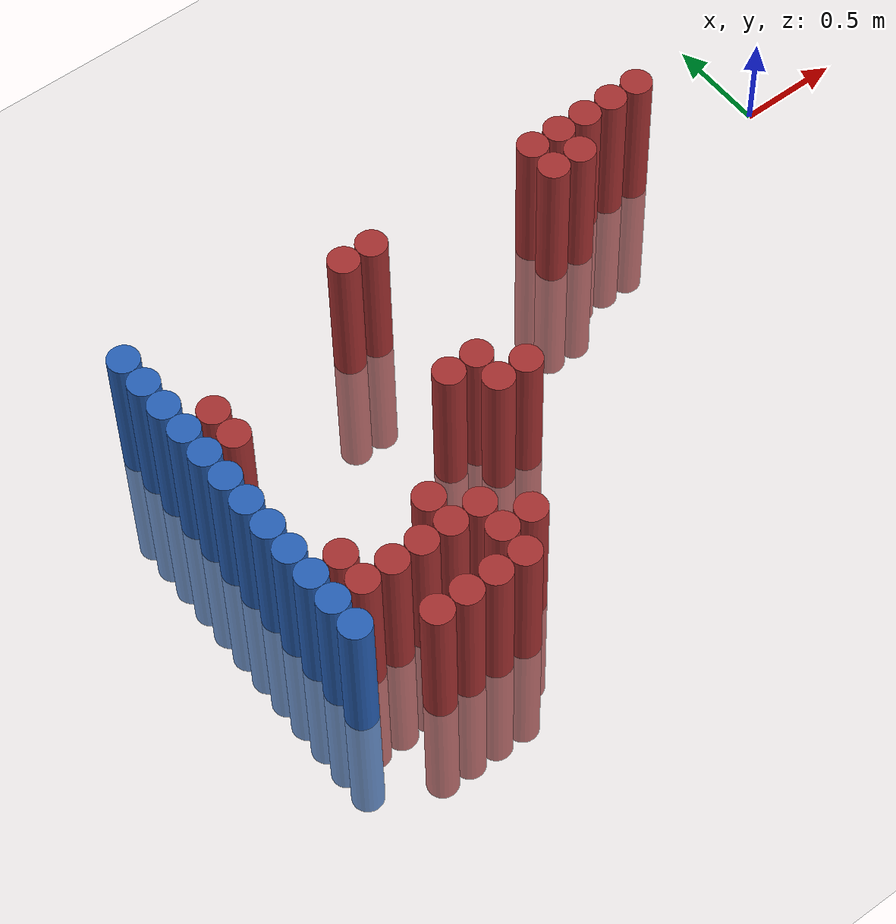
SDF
<sdf version="1.6">
 <world name="default">
  <model name="ground_plane">
   <static>1</static>
   <link name="link">
    <collision name="collision">
     <geometry><plane><normal>0 0 1</normal><size>100 100</size></plane></geometry>
     <surface><friction><ode><mu>100</mu><mu2>50</mu2></ode></friction></surface>
    </collision>
    <visual name="visual">
     <cast_shadows>0</cast_shadows>
     <geometry><plane><normal>0 0 1</normal><size>100 100</size></plane></geometry>
     <material>
      <script><uri>file://media/materials/scripts/gazebo.material</uri><name>Gazebo/Grey</name></script>
     </material>
    </visual>
   </link>
  </model>
  <model name="unit_cylinder_95">
   <static>1</static>
   <pose>-3.425000 -1.475000 0.000000 0.000000 0.000000 0.000000</pose>
   <link name="link">
    <inertial>
     <mass>1</mass>
     <inertia><ixx>0.145833</ixx><ixy>0</ixy><ixz>0</ixz><iyy>0.145833</iyy><iyz>0</iyz><izz>0.125</izz></inertia>
    </inertial>
    <collision name="collision">
     <geometry><cylinder><radius>0.075000</radius><length>1.5</length></cylinder></geometry>
    </collision>
    <visual name="visual">
     <geometry><cylinder><radius>0.075000</radius><length>1.5</length></cylinder></geometry>
     <material>
      <ambient>0.152000 0.379000 0.720000 1</ambient>
      <diffuse>0.152000 0.379000 0.720000 1</diffuse>
     </material>
     <material>
      <script><name>Gazebo/Grey</name><uri>file://media/materials/scripts/gazebo.material</uri></script>
     </material>
    </visual>
   </link>
  </model>
  <model name="unit_cylinder_97">
   <static>1</static>
   <pose>-3.425000 -1.325000 0.000000 0.000000 0.000000 0.000000</pose>
   <link name="link">
    <inertial>
     <mass>1</mass>
     <inertia><ixx>0.145833</ixx><ixy>0</ixy><ixz>0</ixz><iyy>0.145833</iyy><iyz>0</iyz><izz>0.125</izz></inertia>
    </inertial>
    <collision name="collision">
     <geometry><cylinder><radius>0.075000</radius><length>1.5</length></cylinder></geometry>
    </collision>
    <visual name="visual">
     <geometry><cylinder><radius>0.075000</radius><length>1.5</length></cylinder></geometry>
     <material>
      <ambient>0.152000 0.379000 0.720000 1</ambient>
      <diffuse>0.152000 0.379000 0.720000 1</diffuse>
     </material>
     <material>
      <script><name>Gazebo/Grey</name><uri>file://media/materials/scripts/gazebo.material</uri></script>
     </material>
    </visual>
   </link>
  </model>
  <model name="unit_cylinder_99">
   <static>1</static>
   <pose>-3.425000 -1.175000 0.000000 0.000000 0.000000 0.000000</pose>
   <link name="link">
    <inertial>
     <mass>1</mass>
     <inertia><ixx>0.145833</ixx><ixy>0</ixy><ixz>0</ixz><iyy>0.145833</iyy><iyz>0</iyz><izz>0.125</izz></inertia>
    </inertial>
    <collision name="collision">
     <geometry><cylinder><radius>0.075000</radius><length>1.5</length></cylinder></geometry>
    </collision>
    <visual name="visual">
     <geometry><cylinder><radius>0.075000</radius><length>1.5</length></cylinder></geometry>
     <material>
      <ambient>0.152000 0.379000 0.720000 1</ambient>
      <diffuse>0.152000 0.379000 0.720000 1</diffuse>
     </material>
     <material>
      <script><name>Gazebo/Grey</name><uri>file://media/materials/scripts/gazebo.material</uri></script>
     </material>
    </visual>
   </link>
  </model>
  <model name="unit_cylinder_101">
   <static>1</static>
   <pose>-3.425000 -1.025000 0.000000 0.000000 0.000000 0.000000</pose>
   <link name="link">
    <inertial>
     <mass>1</mass>
     <inertia><ixx>0.145833</ixx><ixy>0</ixy><ixz>0</ixz><iyy>0.145833</iyy><iyz>0</iyz><izz>0.125</izz></inertia>
    </inertial>
    <collision name="collision">
     <geometry><cylinder><radius>0.075000</radius><length>1.5</length></cylinder></geometry>
    </collision>
    <visual name="visual">
     <geometry><cylinder><radius>0.075000</radius><length>1.5</length></cylinder></geometry>
     <material>
      <ambient>0.152000 0.379000 0.720000 1</ambient>
      <diffuse>0.152000 0.379000 0.720000 1</diffuse>
     </material>
     <material>
      <script><name>Gazebo/Grey</name><uri>file://media/materials/scripts/gazebo.material</uri></script>
     </material>
    </visual>
   </link>
  </model>
  <model name="unit_cylinder_103">
   <static>1</static>
   <pose>-3.425000 -0.875000 0.000000 0.000000 0.000000 0.000000</pose>
   <link name="link">
    <inertial>
     <mass>1</mass>
     <inertia><ixx>0.145833</ixx><ixy>0</ixy><ixz>0</ixz><iyy>0.145833</iyy><iyz>0</iyz><izz>0.125</izz></inertia>
    </inertial>
    <collision name="collision">
     <geometry><cylinder><radius>0.075000</radius><length>1.5</length></cylinder></geometry>
    </collision>
    <visual name="visual">
     <geometry><cylinder><radius>0.075000</radius><length>1.5</length></cylinder></geometry>
     <material>
      <ambient>0.152000 0.379000 0.720000 1</ambient>
      <diffuse>0.152000 0.379000 0.720000 1</diffuse>
     </material>
     <material>
      <script><name>Gazebo/Grey</name><uri>file://media/materials/scripts/gazebo.material</uri></script>
     </material>
    </visual>
   </link>
  </model>
  <model name="unit_cylinder_105">
   <static>1</static>
   <pose>-3.425000 -0.725000 0.000000 0.000000 0.000000 0.000000</pose>
   <link name="link">
    <inertial>
     <mass>1</mass>
     <inertia><ixx>0.145833</ixx><ixy>0</ixy><ixz>0</ixz><iyy>0.145833</iyy><iyz>0</iyz><izz>0.125</izz></inertia>
    </inertial>
    <collision name="collision">
     <geometry><cylinder><radius>0.075000</radius><length>1.5</length></cylinder></geometry>
    </collision>
    <visual name="visual">
     <geometry><cylinder><radius>0.075000</radius><length>1.5</length></cylinder></geometry>
     <material>
      <ambient>0.152000 0.379000 0.720000 1</ambient>
      <diffuse>0.152000 0.379000 0.720000 1</diffuse>
     </material>
     <material>
      <script><name>Gazebo/Grey</name><uri>file://media/materials/scripts/gazebo.material</uri></script>
     </material>
    </visual>
   </link>
  </model>
  <model name="unit_cylinder_107">
   <static>1</static>
   <pose>-3.425000 -0.575000 0.000000 0.000000 0.000000 0.000000</pose>
   <link name="link">
    <inertial>
     <mass>1</mass>
     <inertia><ixx>0.145833</ixx><ixy>0</ixy><ixz>0</ixz><iyy>0.145833</iyy><iyz>0</iyz><izz>0.125</izz></inertia>
    </inertial>
    <collision name="collision">
     <geometry><cylinder><radius>0.075000</radius><length>1.5</length></cylinder></geometry>
    </collision>
    <visual name="visual">
     <geometry><cylinder><radius>0.075000</radius><length>1.5</length></cylinder></geometry>
     <material>
      <ambient>0.152000 0.379000 0.720000 1</ambient>
      <diffuse>0.152000 0.379000 0.720000 1</diffuse>
     </material>
     <material>
      <script><name>Gazebo/Grey</name><uri>file://media/materials/scripts/gazebo.material</uri></script>
     </material>
    </visual>
   </link>
  </model>
  <model name="unit_cylinder_109">
   <static>1</static>
   <pose>-3.425000 -0.425000 0.000000 0.000000 0.000000 0.000000</pose>
   <link name="link">
    <inertial>
     <mass>1</mass>
     <inertia><ixx>0.145833</ixx><ixy>0</ixy><ixz>0</ixz><iyy>0.145833</iyy><iyz>0</iyz><izz>0.125</izz></inertia>
    </inertial>
    <collision name="collision">
     <geometry><cylinder><radius>0.075000</radius><length>1.5</length></cylinder></geometry>
    </collision>
    <visual name="visual">
     <geometry><cylinder><radius>0.075000</radius><length>1.5</length></cylinder></geometry>
     <material>
      <ambient>0.152000 0.379000 0.720000 1</ambient>
      <diffuse>0.152000 0.379000 0.720000 1</diffuse>
     </material>
     <material>
      <script><name>Gazebo/Grey</name><uri>file://media/materials/scripts/gazebo.material</uri></script>
     </material>
    </visual>
   </link>
  </model>
  <model name="unit_cylinder_111">
   <static>1</static>
   <pose>-3.425000 -0.275000 0.000000 0.000000 0.000000 0.000000</pose>
   <link name="link">
    <inertial>
     <mass>1</mass>
     <inertia><ixx>0.145833</ixx><ixy>0</ixy><ixz>0</ixz><iyy>0.145833</iyy><iyz>0</iyz><izz>0.125</izz></inertia>
    </inertial>
    <collision name="collision">
     <geometry><cylinder><radius>0.075000</radius><length>1.5</length></cylinder></geometry>
    </collision>
    <visual name="visual">
     <geometry><cylinder><radius>0.075000</radius><length>1.5</length></cylinder></geometry>
     <material>
      <ambient>0.152000 0.379000 0.720000 1</ambient>
      <diffuse>0.152000 0.379000 0.720000 1</diffuse>
     </material>
     <material>
      <script><name>Gazebo/Grey</name><uri>file://media/materials/scripts/gazebo.material</uri></script>
     </material>
    </visual>
   </link>
  </model>
  <model name="unit_cylinder_113">
   <static>1</static>
   <pose>-3.425000 -0.125000 0.000000 0.000000 0.000000 0.000000</pose>
   <link name="link">
    <inertial>
     <mass>1</mass>
     <inertia><ixx>0.145833</ixx><ixy>0</ixy><ixz>0</ixz><iyy>0.145833</iyy><iyz>0</iyz><izz>0.125</izz></inertia>
    </inertial>
    <collision name="collision">
     <geometry><cylinder><radius>0.075000</radius><length>1.5</length></cylinder></geometry>
    </collision>
    <visual name="visual">
     <geometry><cylinder><radius>0.075000</radius><length>1.5</length></cylinder></geometry>
     <material>
      <ambient>0.152000 0.379000 0.720000 1</ambient>
      <diffuse>0.152000 0.379000 0.720000 1</diffuse>
     </material>
     <material>
      <script><name>Gazebo/Grey</name><uri>file://media/materials/scripts/gazebo.material</uri></script>
     </material>
    </visual>
   </link>
  </model>
  <model name="unit_cylinder_115">
   <static>1</static>
   <pose>-3.425000 0.025000 0.000000 0.000000 0.000000 0.000000</pose>
   <link name="link">
    <inertial>
     <mass>1</mass>
     <inertia><ixx>0.145833</ixx><ixy>0</ixy><ixz>0</ixz><iyy>0.145833</iyy><iyz>0</iyz><izz>0.125</izz></inertia>
    </inertial>
    <collision name="collision">
     <geometry><cylinder><radius>0.075000</radius><length>1.5</length></cylinder></geometry>
    </collision>
    <visual name="visual">
     <geometry><cylinder><radius>0.075000</radius><length>1.5</length></cylinder></geometry>
     <material>
      <ambient>0.152000 0.379000 0.720000 1</ambient>
      <diffuse>0.152000 0.379000 0.720000 1</diffuse>
     </material>
     <material>
      <script><name>Gazebo/Grey</name><uri>file://media/materials/scripts/gazebo.material</uri></script>
     </material>
    </visual>
   </link>
  </model>
  <model name="unit_cylinder_117">
   <static>1</static>
   <pose>-3.425000 0.175000 0.000000 0.000000 0.000000 0.000000</pose>
   <link name="link">
    <inertial>
     <mass>1</mass>
     <inertia><ixx>0.145833</ixx><ixy>0</ixy><ixz>0</ixz><iyy>0.145833</iyy><iyz>0</iyz><izz>0.125</izz></inertia>
    </inertial>
    <collision name="collision">
     <geometry><cylinder><radius>0.075000</radius><length>1.5</length></cylinder></geometry>
    </collision>
    <visual name="visual">
     <geometry><cylinder><radius>0.075000</radius><length>1.5</length></cylinder></geometry>
     <material>
      <ambient>0.152000 0.379000 0.720000 1</ambient>
      <diffuse>0.152000 0.379000 0.720000 1</diffuse>
     </material>
     <material>
      <script><name>Gazebo/Grey</name><uri>file://media/materials/scripts/gazebo.material</uri></script>
     </material>
    </visual>
   </link>
  </model>
  <model name="unit_cylinder_211">
   <static>1</static>
   <pose>-3.425000 -1.475000 0.000000 0.000000 0.000000 0.000000</pose>
   <link name="link">
    <inertial>
     <mass>1</mass>
     <inertia><ixx>0.145833</ixx><ixy>0</ixy><ixz>0</ixz><iyy>0.145833</iyy><iyz>0</iyz><izz>0.125</izz></inertia>
    </inertial>
    <collision name="collision">
     <geometry><cylinder><radius>0.075000</radius><length>1.5</length></cylinder></geometry>
    </collision>
    <visual name="visual">
     <geometry><cylinder><radius>0.075000</radius><length>1.5</length></cylinder></geometry>
     <material>
      <ambient>0.152000 0.379000 0.720000 1</ambient>
      <diffuse>0.152000 0.379000 0.720000 1</diffuse>
     </material>
     <material>
      <script><name>Gazebo/Grey</name><uri>file://media/materials/scripts/gazebo.material</uri></script>
     </material>
    </visual>
   </link>
  </model>
  <model name="unit_cylinder_212">
   <static>1</static>
   <pose>-3.425000 -1.325000 0.000000 0.000000 0.000000 0.000000</pose>
   <link name="link">
    <inertial>
     <mass>1</mass>
     <inertia><ixx>0.145833</ixx><ixy>0</ixy><ixz>0</ixz><iyy>0.145833</iyy><iyz>0</iyz><izz>0.125</izz></inertia>
    </inertial>
    <collision name="collision">
     <geometry><cylinder><radius>0.075000</radius><length>1.5</length></cylinder></geometry>
    </collision>
    <visual name="visual">
     <geometry><cylinder><radius>0.075000</radius><length>1.5</length></cylinder></geometry>
     <material>
      <ambient>0.152000 0.379000 0.720000 1</ambient>
      <diffuse>0.152000 0.379000 0.720000 1</diffuse>
     </material>
     <material>
      <script><name>Gazebo/Grey</name><uri>file://media/materials/scripts/gazebo.material</uri></script>
     </material>
    </visual>
   </link>
  </model>
  <model name="unit_cylinder_213">
   <static>1</static>
   <pose>-3.425000 -1.175000 0.000000 0.000000 0.000000 0.000000</pose>
   <link name="link">
    <inertial>
     <mass>1</mass>
     <inertia><ixx>0.145833</ixx><ixy>0</ixy><ixz>0</ixz><iyy>0.145833</iyy><iyz>0</iyz><izz>0.125</izz></inertia>
    </inertial>
    <collision name="collision">
     <geometry><cylinder><radius>0.075000</radius><length>1.5</length></cylinder></geometry>
    </collision>
    <visual name="visual">
     <geometry><cylinder><radius>0.075000</radius><length>1.5</length></cylinder></geometry>
     <material>
      <ambient>0.152000 0.379000 0.720000 1</ambient>
      <diffuse>0.152000 0.379000 0.720000 1</diffuse>
     </material>
     <material>
      <script><name>Gazebo/Grey</name><uri>file://media/materials/scripts/gazebo.material</uri></script>
     </material>
    </visual>
   </link>
  </model>
  <model name="unit_cylinder_214">
   <static>1</static>
   <pose>-3.425000 -1.025000 0.000000 0.000000 0.000000 0.000000</pose>
   <link name="link">
    <inertial>
     <mass>1</mass>
     <inertia><ixx>0.145833</ixx><ixy>0</ixy><ixz>0</ixz><iyy>0.145833</iyy><iyz>0</iyz><izz>0.125</izz></inertia>
    </inertial>
    <collision name="collision">
     <geometry><cylinder><radius>0.075000</radius><length>1.5</length></cylinder></geometry>
    </collision>
    <visual name="visual">
     <geometry><cylinder><radius>0.075000</radius><length>1.5</length></cylinder></geometry>
     <material>
      <ambient>0.152000 0.379000 0.720000 1</ambient>
      <diffuse>0.152000 0.379000 0.720000 1</diffuse>
     </material>
     <material>
      <script><name>Gazebo/Grey</name><uri>file://media/materials/scripts/gazebo.material</uri></script>
     </material>
    </visual>
   </link>
  </model>
  <model name="unit_cylinder_215">
   <static>1</static>
   <pose>-3.425000 -0.875000 0.000000 0.000000 0.000000 0.000000</pose>
   <link name="link">
    <inertial>
     <mass>1</mass>
     <inertia><ixx>0.145833</ixx><ixy>0</ixy><ixz>0</ixz><iyy>0.145833</iyy><iyz>0</iyz><izz>0.125</izz></inertia>
    </inertial>
    <collision name="collision">
     <geometry><cylinder><radius>0.075000</radius><length>1.5</length></cylinder></geometry>
    </collision>
    <visual name="visual">
     <geometry><cylinder><radius>0.075000</radius><length>1.5</length></cylinder></geometry>
     <material>
      <ambient>0.152000 0.379000 0.720000 1</ambient>
      <diffuse>0.152000 0.379000 0.720000 1</diffuse>
     </material>
     <material>
      <script><name>Gazebo/Grey</name><uri>file://media/materials/scripts/gazebo.material</uri></script>
     </material>
    </visual>
   </link>
  </model>
  <model name="unit_cylinder_216">
   <static>1</static>
   <pose>-3.425000 -0.725000 0.000000 0.000000 0.000000 0.000000</pose>
   <link name="link">
    <inertial>
     <mass>1</mass>
     <inertia><ixx>0.145833</ixx><ixy>0</ixy><ixz>0</ixz><iyy>0.145833</iyy><iyz>0</iyz><izz>0.125</izz></inertia>
    </inertial>
    <collision name="collision">
     <geometry><cylinder><radius>0.075000</radius><length>1.5</length></cylinder></geometry>
    </collision>
    <visual name="visual">
     <geometry><cylinder><radius>0.075000</radius><length>1.5</length></cylinder></geometry>
     <material>
      <ambient>0.152000 0.379000 0.720000 1</ambient>
      <diffuse>0.152000 0.379000 0.720000 1</diffuse>
     </material>
     <material>
      <script><name>Gazebo/Grey</name><uri>file://media/materials/scripts/gazebo.material</uri></script>
     </material>
    </visual>
   </link>
  </model>
  <model name="unit_cylinder_217">
   <static>1</static>
   <pose>-3.425000 -0.575000 0.000000 0.000000 0.000000 0.000000</pose>
   <link name="link">
    <inertial>
     <mass>1</mass>
     <inertia><ixx>0.145833</ixx><ixy>0</ixy><ixz>0</ixz><iyy>0.145833</iyy><iyz>0</iyz><izz>0.125</izz></inertia>
    </inertial>
    <collision name="collision">
     <geometry><cylinder><radius>0.075000</radius><length>1.5</length></cylinder></geometry>
    </collision>
    <visual name="visual">
     <geometry><cylinder><radius>0.075000</radius><length>1.5</length></cylinder></geometry>
     <material>
      <ambient>0.152000 0.379000 0.720000 1</ambient>
      <diffuse>0.152000 0.379000 0.720000 1</diffuse>
     </material>
     <material>
      <script><name>Gazebo/Grey</name><uri>file://media/materials/scripts/gazebo.material</uri></script>
     </material>
    </visual>
   </link>
  </model>
  <model name="unit_cylinder_218">
   <static>1</static>
   <pose>-3.425000 -0.425000 0.000000 0.000000 0.000000 0.000000</pose>
   <link name="link">
    <inertial>
     <mass>1</mass>
     <inertia><ixx>0.145833</ixx><ixy>0</ixy><ixz>0</ixz><iyy>0.145833</iyy><iyz>0</iyz><izz>0.125</izz></inertia>
    </inertial>
    <collision name="collision">
     <geometry><cylinder><radius>0.075000</radius><length>1.5</length></cylinder></geometry>
    </collision>
    <visual name="visual">
     <geometry><cylinder><radius>0.075000</radius><length>1.5</length></cylinder></geometry>
     <material>
      <ambient>0.152000 0.379000 0.720000 1</ambient>
      <diffuse>0.152000 0.379000 0.720000 1</diffuse>
     </material>
     <material>
      <script><name>Gazebo/Grey</name><uri>file://media/materials/scripts/gazebo.material</uri></script>
     </material>
    </visual>
   </link>
  </model>
  <model name="unit_cylinder_219">
   <static>1</static>
   <pose>-3.425000 -0.275000 0.000000 0.000000 0.000000 0.000000</pose>
   <link name="link">
    <inertial>
     <mass>1</mass>
     <inertia><ixx>0.145833</ixx><ixy>0</ixy><ixz>0</ixz><iyy>0.145833</iyy><iyz>0</iyz><izz>0.125</izz></inertia>
    </inertial>
    <collision name="collision">
     <geometry><cylinder><radius>0.075000</radius><length>1.5</length></cylinder></geometry>
    </collision>
    <visual name="visual">
     <geometry><cylinder><radius>0.075000</radius><length>1.5</length></cylinder></geometry>
     <material>
      <ambient>0.152000 0.379000 0.720000 1</ambient>
      <diffuse>0.152000 0.379000 0.720000 1</diffuse>
     </material>
     <material>
      <script><name>Gazebo/Grey</name><uri>file://media/materials/scripts/gazebo.material</uri></script>
     </material>
    </visual>
   </link>
  </model>
  <model name="unit_cylinder_220">
   <static>1</static>
   <pose>-3.425000 -0.125000 0.000000 0.000000 0.000000 0.000000</pose>
   <link name="link">
    <inertial>
     <mass>1</mass>
     <inertia><ixx>0.145833</ixx><ixy>0</ixy><ixz>0</ixz><iyy>0.145833</iyy><iyz>0</iyz><izz>0.125</izz></inertia>
    </inertial>
    <collision name="collision">
     <geometry><cylinder><radius>0.075000</radius><length>1.5</length></cylinder></geometry>
    </collision>
    <visual name="visual">
     <geometry><cylinder><radius>0.075000</radius><length>1.5</length></cylinder></geometry>
     <material>
      <ambient>0.152000 0.379000 0.720000 1</ambient>
      <diffuse>0.152000 0.379000 0.720000 1</diffuse>
     </material>
     <material>
      <script><name>Gazebo/Grey</name><uri>file://media/materials/scripts/gazebo.material</uri></script>
     </material>
    </visual>
   </link>
  </model>
  <model name="unit_cylinder_221">
   <static>1</static>
   <pose>-3.425000 0.025000 0.000000 0.000000 0.000000 0.000000</pose>
   <link name="link">
    <inertial>
     <mass>1</mass>
     <inertia><ixx>0.145833</ixx><ixy>0</ixy><ixz>0</ixz><iyy>0.145833</iyy><iyz>0</iyz><izz>0.125</izz></inertia>
    </inertial>
    <collision name="collision">
     <geometry><cylinder><radius>0.075000</radius><length>1.5</length></cylinder></geometry>
    </collision>
    <visual name="visual">
     <geometry><cylinder><radius>0.075000</radius><length>1.5</length></cylinder></geometry>
     <material>
      <ambient>0.152000 0.379000 0.720000 1</ambient>
      <diffuse>0.152000 0.379000 0.720000 1</diffuse>
     </material>
     <material>
      <script><name>Gazebo/Grey</name><uri>file://media/materials/scripts/gazebo.material</uri></script>
     </material>
    </visual>
   </link>
  </model>
  <model name="unit_cylinder_259">
   <static>1</static>
   <pose>-3.275000 -1.325000 0.000000 0.000000 0.000000 0.000000</pose>
   <link name="link">
    <inertial>
     <mass>1</mass>
     <inertia><ixx>0.145833</ixx><ixy>0</ixy><ixz>0</ixz><iyy>0.145833</iyy><iyz>0</iyz><izz>0.125</izz></inertia>
    </inertial>
    <collision name="collision">
     <geometry><cylinder><radius>0.075000</radius><length>1.5</length></cylinder></geometry>
    </collision>
    <visual name="visual">
     <geometry><cylinder><radius>0.075000</radius><length>1.5</length></cylinder></geometry>
     <material>
      <ambient>0.648000 0.192000 0.192000 1</ambient>
      <diffuse>0.648000 0.192000 0.192000 1</diffuse>
     </material>
     <material>
      <script><name>Gazebo/Grey</name><uri>file://media/materials/scripts/gazebo.material</uri></script>
     </material>
    </visual>
   </link>
  </model>
  <model name="unit_cylinder_260">
   <static>1</static>
   <pose>-3.275000 -1.175000 0.000000 0.000000 0.000000 0.000000</pose>
   <link name="link">
    <inertial>
     <mass>1</mass>
     <inertia><ixx>0.145833</ixx><ixy>0</ixy><ixz>0</ixz><iyy>0.145833</iyy><iyz>0</iyz><izz>0.125</izz></inertia>
    </inertial>
    <collision name="collision">
     <geometry><cylinder><radius>0.075000</radius><length>1.5</length></cylinder></geometry>
    </collision>
    <visual name="visual">
     <geometry><cylinder><radius>0.075000</radius><length>1.5</length></cylinder></geometry>
     <material>
      <ambient>0.648000 0.192000 0.192000 1</ambient>
      <diffuse>0.648000 0.192000 0.192000 1</diffuse>
     </material>
     <material>
      <script><name>Gazebo/Grey</name><uri>file://media/materials/scripts/gazebo.material</uri></script>
     </material>
    </visual>
   </link>
  </model>
  <model name="unit_cylinder_261">
   <static>1</static>
   <pose>-3.275000 -0.425000 0.000000 0.000000 0.000000 0.000000</pose>
   <link name="link">
    <inertial>
     <mass>1</mass>
     <inertia><ixx>0.145833</ixx><ixy>0</ixy><ixz>0</ixz><iyy>0.145833</iyy><iyz>0</iyz><izz>0.125</izz></inertia>
    </inertial>
    <collision name="collision">
     <geometry><cylinder><radius>0.075000</radius><length>1.5</length></cylinder></geometry>
    </collision>
    <visual name="visual">
     <geometry><cylinder><radius>0.075000</radius><length>1.5</length></cylinder></geometry>
     <material>
      <ambient>0.648000 0.192000 0.192000 1</ambient>
      <diffuse>0.648000 0.192000 0.192000 1</diffuse>
     </material>
     <material>
      <script><name>Gazebo/Grey</name><uri>file://media/materials/scripts/gazebo.material</uri></script>
     </material>
    </visual>
   </link>
  </model>
  <model name="unit_cylinder_262">
   <static>1</static>
   <pose>-3.275000 -0.275000 0.000000 0.000000 0.000000 0.000000</pose>
   <link name="link">
    <inertial>
     <mass>1</mass>
     <inertia><ixx>0.145833</ixx><ixy>0</ixy><ixz>0</ixz><iyy>0.145833</iyy><iyz>0</iyz><izz>0.125</izz></inertia>
    </inertial>
    <collision name="collision">
     <geometry><cylinder><radius>0.075000</radius><length>1.5</length></cylinder></geometry>
    </collision>
    <visual name="visual">
     <geometry><cylinder><radius>0.075000</radius><length>1.5</length></cylinder></geometry>
     <material>
      <ambient>0.648000 0.192000 0.192000 1</ambient>
      <diffuse>0.648000 0.192000 0.192000 1</diffuse>
     </material>
     <material>
      <script><name>Gazebo/Grey</name><uri>file://media/materials/scripts/gazebo.material</uri></script>
     </material>
    </visual>
   </link>
  </model>
  <model name="unit_cylinder_278">
   <static>1</static>
   <pose>-3.125000 -1.625000 0.000000 0.000000 0.000000 0.000000</pose>
   <link name="link">
    <inertial>
     <mass>1</mass>
     <inertia><ixx>0.145833</ixx><ixy>0</ixy><ixz>0</ixz><iyy>0.145833</iyy><iyz>0</iyz><izz>0.125</izz></inertia>
    </inertial>
    <collision name="collision">
     <geometry><cylinder><radius>0.075000</radius><length>1.5</length></cylinder></geometry>
    </collision>
    <visual name="visual">
     <geometry><cylinder><radius>0.075000</radius><length>1.5</length></cylinder></geometry>
     <material>
      <ambient>0.648000 0.192000 0.192000 1</ambient>
      <diffuse>0.648000 0.192000 0.192000 1</diffuse>
     </material>
     <material>
      <script><name>Gazebo/Grey</name><uri>file://media/materials/scripts/gazebo.material</uri></script>
     </material>
    </visual>
   </link>
  </model>
  <model name="unit_cylinder_279">
   <static>1</static>
   <pose>-3.125000 -1.325000 0.000000 0.000000 0.000000 0.000000</pose>
   <link name="link">
    <inertial>
     <mass>1</mass>
     <inertia><ixx>0.145833</ixx><ixy>0</ixy><ixz>0</ixz><iyy>0.145833</iyy><iyz>0</iyz><izz>0.125</izz></inertia>
    </inertial>
    <collision name="collision">
     <geometry><cylinder><radius>0.075000</radius><length>1.5</length></cylinder></geometry>
    </collision>
    <visual name="visual">
     <geometry><cylinder><radius>0.075000</radius><length>1.5</length></cylinder></geometry>
     <material>
      <ambient>0.648000 0.192000 0.192000 1</ambient>
      <diffuse>0.648000 0.192000 0.192000 1</diffuse>
     </material>
     <material>
      <script><name>Gazebo/Grey</name><uri>file://media/materials/scripts/gazebo.material</uri></script>
     </material>
    </visual>
   </link>
  </model>
  <model name="unit_cylinder_289">
   <static>1</static>
   <pose>-2.975000 -1.625000 0.000000 0.000000 0.000000 0.000000</pose>
   <link name="link">
    <inertial>
     <mass>1</mass>
     <inertia><ixx>0.145833</ixx><ixy>0</ixy><ixz>0</ixz><iyy>0.145833</iyy><iyz>0</iyz><izz>0.125</izz></inertia>
    </inertial>
    <collision name="collision">
     <geometry><cylinder><radius>0.075000</radius><length>1.5</length></cylinder></geometry>
    </collision>
    <visual name="visual">
     <geometry><cylinder><radius>0.075000</radius><length>1.5</length></cylinder></geometry>
     <material>
      <ambient>0.648000 0.192000 0.192000 1</ambient>
      <diffuse>0.648000 0.192000 0.192000 1</diffuse>
     </material>
     <material>
      <script><name>Gazebo/Grey</name><uri>file://media/materials/scripts/gazebo.material</uri></script>
     </material>
    </visual>
   </link>
  </model>
  <model name="unit_cylinder_290">
   <static>1</static>
   <pose>-2.975000 -1.325000 0.000000 0.000000 0.000000 0.000000</pose>
   <link name="link">
    <inertial>
     <mass>1</mass>
     <inertia><ixx>0.145833</ixx><ixy>0</ixy><ixz>0</ixz><iyy>0.145833</iyy><iyz>0</iyz><izz>0.125</izz></inertia>
    </inertial>
    <collision name="collision">
     <geometry><cylinder><radius>0.075000</radius><length>1.5</length></cylinder></geometry>
    </collision>
    <visual name="visual">
     <geometry><cylinder><radius>0.075000</radius><length>1.5</length></cylinder></geometry>
     <material>
      <ambient>0.648000 0.192000 0.192000 1</ambient>
      <diffuse>0.648000 0.192000 0.192000 1</diffuse>
     </material>
     <material>
      <script><name>Gazebo/Grey</name><uri>file://media/materials/scripts/gazebo.material</uri></script>
     </material>
    </visual>
   </link>
  </model>
  <model name="unit_cylinder_298">
   <static>1</static>
   <pose>-2.825000 -1.625000 0.000000 0.000000 0.000000 0.000000</pose>
   <link name="link">
    <inertial>
     <mass>1</mass>
     <inertia><ixx>0.145833</ixx><ixy>0</ixy><ixz>0</ixz><iyy>0.145833</iyy><iyz>0</iyz><izz>0.125</izz></inertia>
    </inertial>
    <collision name="collision">
     <geometry><cylinder><radius>0.075000</radius><length>1.5</length></cylinder></geometry>
    </collision>
    <visual name="visual">
     <geometry><cylinder><radius>0.075000</radius><length>1.5</length></cylinder></geometry>
     <material>
      <ambient>0.648000 0.192000 0.192000 1</ambient>
      <diffuse>0.648000 0.192000 0.192000 1</diffuse>
     </material>
     <material>
      <script><name>Gazebo/Grey</name><uri>file://media/materials/scripts/gazebo.material</uri></script>
     </material>
    </visual>
   </link>
  </model>
  <model name="unit_cylinder_299">
   <static>1</static>
   <pose>-2.825000 -1.325000 0.000000 0.000000 0.000000 0.000000</pose>
   <link name="link">
    <inertial>
     <mass>1</mass>
     <inertia><ixx>0.145833</ixx><ixy>0</ixy><ixz>0</ixz><iyy>0.145833</iyy><iyz>0</iyz><izz>0.125</izz></inertia>
    </inertial>
    <collision name="collision">
     <geometry><cylinder><radius>0.075000</radius><length>1.5</length></cylinder></geometry>
    </collision>
    <visual name="visual">
     <geometry><cylinder><radius>0.075000</radius><length>1.5</length></cylinder></geometry>
     <material>
      <ambient>0.648000 0.192000 0.192000 1</ambient>
      <diffuse>0.648000 0.192000 0.192000 1</diffuse>
     </material>
     <material>
      <script><name>Gazebo/Grey</name><uri>file://media/materials/scripts/gazebo.material</uri></script>
     </material>
    </visual>
   </link>
  </model>
  <model name="unit_cylinder_300">
   <static>1</static>
   <pose>-2.825000 -1.175000 0.000000 0.000000 0.000000 0.000000</pose>
   <link name="link">
    <inertial>
     <mass>1</mass>
     <inertia><ixx>0.145833</ixx><ixy>0</ixy><ixz>0</ixz><iyy>0.145833</iyy><iyz>0</iyz><izz>0.125</izz></inertia>
    </inertial>
    <collision name="collision">
     <geometry><cylinder><radius>0.075000</radius><length>1.5</length></cylinder></geometry>
    </collision>
    <visual name="visual">
     <geometry><cylinder><radius>0.075000</radius><length>1.5</length></cylinder></geometry>
     <material>
      <ambient>0.648000 0.192000 0.192000 1</ambient>
      <diffuse>0.648000 0.192000 0.192000 1</diffuse>
     </material>
     <material>
      <script><name>Gazebo/Grey</name><uri>file://media/materials/scripts/gazebo.material</uri></script>
     </material>
    </visual>
   </link>
  </model>
  <model name="unit_cylinder_305">
   <static>1</static>
   <pose>-2.675000 -1.625000 0.000000 0.000000 0.000000 0.000000</pose>
   <link name="link">
    <inertial>
     <mass>1</mass>
     <inertia><ixx>0.145833</ixx><ixy>0</ixy><ixz>0</ixz><iyy>0.145833</iyy><iyz>0</iyz><izz>0.125</izz></inertia>
    </inertial>
    <collision name="collision">
     <geometry><cylinder><radius>0.075000</radius><length>1.5</length></cylinder></geometry>
    </collision>
    <visual name="visual">
     <geometry><cylinder><radius>0.075000</radius><length>1.5</length></cylinder></geometry>
     <material>
      <ambient>0.648000 0.192000 0.192000 1</ambient>
      <diffuse>0.648000 0.192000 0.192000 1</diffuse>
     </material>
     <material>
      <script><name>Gazebo/Grey</name><uri>file://media/materials/scripts/gazebo.material</uri></script>
     </material>
    </visual>
   </link>
  </model>
  <model name="unit_cylinder_306">
   <static>1</static>
   <pose>-2.675000 -1.475000 0.000000 0.000000 0.000000 0.000000</pose>
   <link name="link">
    <inertial>
     <mass>1</mass>
     <inertia><ixx>0.145833</ixx><ixy>0</ixy><ixz>0</ixz><iyy>0.145833</iyy><iyz>0</iyz><izz>0.125</izz></inertia>
    </inertial>
    <collision name="collision">
     <geometry><cylinder><radius>0.075000</radius><length>1.5</length></cylinder></geometry>
    </collision>
    <visual name="visual">
     <geometry><cylinder><radius>0.075000</radius><length>1.5</length></cylinder></geometry>
     <material>
      <ambient>0.648000 0.192000 0.192000 1</ambient>
      <diffuse>0.648000 0.192000 0.192000 1</diffuse>
     </material>
     <material>
      <script><name>Gazebo/Grey</name><uri>file://media/materials/scripts/gazebo.material</uri></script>
     </material>
    </visual>
   </link>
  </model>
  <model name="unit_cylinder_307">
   <static>1</static>
   <pose>-2.675000 -1.325000 0.000000 0.000000 0.000000 0.000000</pose>
   <link name="link">
    <inertial>
     <mass>1</mass>
     <inertia><ixx>0.145833</ixx><ixy>0</ixy><ixz>0</ixz><iyy>0.145833</iyy><iyz>0</iyz><izz>0.125</izz></inertia>
    </inertial>
    <collision name="collision">
     <geometry><cylinder><radius>0.075000</radius><length>1.5</length></cylinder></geometry>
    </collision>
    <visual name="visual">
     <geometry><cylinder><radius>0.075000</radius><length>1.5</length></cylinder></geometry>
     <material>
      <ambient>0.648000 0.192000 0.192000 1</ambient>
      <diffuse>0.648000 0.192000 0.192000 1</diffuse>
     </material>
     <material>
      <script><name>Gazebo/Grey</name><uri>file://media/materials/scripts/gazebo.material</uri></script>
     </material>
    </visual>
   </link>
  </model>
  <model name="unit_cylinder_312">
   <static>1</static>
   <pose>-2.525000 -1.475000 0.000000 0.000000 0.000000 0.000000</pose>
   <link name="link">
    <inertial>
     <mass>1</mass>
     <inertia><ixx>0.145833</ixx><ixy>0</ixy><ixz>0</ixz><iyy>0.145833</iyy><iyz>0</iyz><izz>0.125</izz></inertia>
    </inertial>
    <collision name="collision">
     <geometry><cylinder><radius>0.075000</radius><length>1.5</length></cylinder></geometry>
    </collision>
    <visual name="visual">
     <geometry><cylinder><radius>0.075000</radius><length>1.5</length></cylinder></geometry>
     <material>
      <ambient>0.648000 0.192000 0.192000 1</ambient>
      <diffuse>0.648000 0.192000 0.192000 1</diffuse>
     </material>
     <material>
      <script><name>Gazebo/Grey</name><uri>file://media/materials/scripts/gazebo.material</uri></script>
     </material>
    </visual>
   </link>
  </model>
  <model name="unit_cylinder_313">
   <static>1</static>
   <pose>-2.375000 -0.725000 0.000000 0.000000 0.000000 0.000000</pose>
   <link name="link">
    <inertial>
     <mass>1</mass>
     <inertia><ixx>0.145833</ixx><ixy>0</ixy><ixz>0</ixz><iyy>0.145833</iyy><iyz>0</iyz><izz>0.125</izz></inertia>
    </inertial>
    <collision name="collision">
     <geometry><cylinder><radius>0.075000</radius><length>1.5</length></cylinder></geometry>
    </collision>
    <visual name="visual">
     <geometry><cylinder><radius>0.075000</radius><length>1.5</length></cylinder></geometry>
     <material>
      <ambient>0.648000 0.192000 0.192000 1</ambient>
      <diffuse>0.648000 0.192000 0.192000 1</diffuse>
     </material>
     <material>
      <script><name>Gazebo/Grey</name><uri>file://media/materials/scripts/gazebo.material</uri></script>
     </material>
    </visual>
   </link>
  </model>
  <model name="unit_cylinder_314">
   <static>1</static>
   <pose>-2.375000 0.025000 0.000000 0.000000 0.000000 0.000000</pose>
   <link name="link">
    <inertial>
     <mass>1</mass>
     <inertia><ixx>0.145833</ixx><ixy>0</ixy><ixz>0</ixz><iyy>0.145833</iyy><iyz>0</iyz><izz>0.125</izz></inertia>
    </inertial>
    <collision name="collision">
     <geometry><cylinder><radius>0.075000</radius><length>1.5</length></cylinder></geometry>
    </collision>
    <visual name="visual">
     <geometry><cylinder><radius>0.075000</radius><length>1.5</length></cylinder></geometry>
     <material>
      <ambient>0.648000 0.192000 0.192000 1</ambient>
      <diffuse>0.648000 0.192000 0.192000 1</diffuse>
     </material>
     <material>
      <script><name>Gazebo/Grey</name><uri>file://media/materials/scripts/gazebo.material</uri></script>
     </material>
    </visual>
   </link>
  </model>
  <model name="unit_cylinder_319">
   <static>1</static>
   <pose>-2.225000 -0.875000 0.000000 0.000000 0.000000 0.000000</pose>
   <link name="link">
    <inertial>
     <mass>1</mass>
     <inertia><ixx>0.145833</ixx><ixy>0</ixy><ixz>0</ixz><iyy>0.145833</iyy><iyz>0</iyz><izz>0.125</izz></inertia>
    </inertial>
    <collision name="collision">
     <geometry><cylinder><radius>0.075000</radius><length>1.5</length></cylinder></geometry>
    </collision>
    <visual name="visual">
     <geometry><cylinder><radius>0.075000</radius><length>1.5</length></cylinder></geometry>
     <material>
      <ambient>0.648000 0.192000 0.192000 1</ambient>
      <diffuse>0.648000 0.192000 0.192000 1</diffuse>
     </material>
     <material>
      <script><name>Gazebo/Grey</name><uri>file://media/materials/scripts/gazebo.material</uri></script>
     </material>
    </visual>
   </link>
  </model>
  <model name="unit_cylinder_320">
   <static>1</static>
   <pose>-2.225000 -0.725000 0.000000 0.000000 0.000000 0.000000</pose>
   <link name="link">
    <inertial>
     <mass>1</mass>
     <inertia><ixx>0.145833</ixx><ixy>0</ixy><ixz>0</ixz><iyy>0.145833</iyy><iyz>0</iyz><izz>0.125</izz></inertia>
    </inertial>
    <collision name="collision">
     <geometry><cylinder><radius>0.075000</radius><length>1.5</length></cylinder></geometry>
    </collision>
    <visual name="visual">
     <geometry><cylinder><radius>0.075000</radius><length>1.5</length></cylinder></geometry>
     <material>
      <ambient>0.648000 0.192000 0.192000 1</ambient>
      <diffuse>0.648000 0.192000 0.192000 1</diffuse>
     </material>
     <material>
      <script><name>Gazebo/Grey</name><uri>file://media/materials/scripts/gazebo.material</uri></script>
     </material>
    </visual>
   </link>
  </model>
  <model name="unit_cylinder_321">
   <static>1</static>
   <pose>-2.225000 0.025000 0.000000 0.000000 0.000000 0.000000</pose>
   <link name="link">
    <inertial>
     <mass>1</mass>
     <inertia><ixx>0.145833</ixx><ixy>0</ixy><ixz>0</ixz><iyy>0.145833</iyy><iyz>0</iyz><izz>0.125</izz></inertia>
    </inertial>
    <collision name="collision">
     <geometry><cylinder><radius>0.075000</radius><length>1.5</length></cylinder></geometry>
    </collision>
    <visual name="visual">
     <geometry><cylinder><radius>0.075000</radius><length>1.5</length></cylinder></geometry>
     <material>
      <ambient>0.648000 0.192000 0.192000 1</ambient>
      <diffuse>0.648000 0.192000 0.192000 1</diffuse>
     </material>
     <material>
      <script><name>Gazebo/Grey</name><uri>file://media/materials/scripts/gazebo.material</uri></script>
     </material>
    </visual>
   </link>
  </model>
  <model name="unit_cylinder_328">
   <static>1</static>
   <pose>-2.075000 -0.875000 0.000000 0.000000 0.000000 0.000000</pose>
   <link name="link">
    <inertial>
     <mass>1</mass>
     <inertia><ixx>0.145833</ixx><ixy>0</ixy><ixz>0</ixz><iyy>0.145833</iyy><iyz>0</iyz><izz>0.125</izz></inertia>
    </inertial>
    <collision name="collision">
     <geometry><cylinder><radius>0.075000</radius><length>1.5</length></cylinder></geometry>
    </collision>
    <visual name="visual">
     <geometry><cylinder><radius>0.075000</radius><length>1.5</length></cylinder></geometry>
     <material>
      <ambient>0.648000 0.192000 0.192000 1</ambient>
      <diffuse>0.648000 0.192000 0.192000 1</diffuse>
     </material>
     <material>
      <script><name>Gazebo/Grey</name><uri>file://media/materials/scripts/gazebo.material</uri></script>
     </material>
    </visual>
   </link>
  </model>
  <model name="unit_cylinder_360">
   <static>1</static>
   <pose>-1.325000 -0.125000 0.000000 0.000000 0.000000 0.000000</pose>
   <link name="link">
    <inertial>
     <mass>1</mass>
     <inertia><ixx>0.145833</ixx><ixy>0</ixy><ixz>0</ixz><iyy>0.145833</iyy><iyz>0</iyz><izz>0.125</izz></inertia>
    </inertial>
    <collision name="collision">
     <geometry><cylinder><radius>0.075000</radius><length>1.5</length></cylinder></geometry>
    </collision>
    <visual name="visual">
     <geometry><cylinder><radius>0.075000</radius><length>1.5</length></cylinder></geometry>
     <material>
      <ambient>0.648000 0.192000 0.192000 1</ambient>
      <diffuse>0.648000 0.192000 0.192000 1</diffuse>
     </material>
     <material>
      <script><name>Gazebo/Grey</name><uri>file://media/materials/scripts/gazebo.material</uri></script>
     </material>
    </visual>
   </link>
  </model>
  <model name="unit_cylinder_361">
   <static>1</static>
   <pose>-1.325000 0.025000 0.000000 0.000000 0.000000 0.000000</pose>
   <link name="link">
    <inertial>
     <mass>1</mass>
     <inertia><ixx>0.145833</ixx><ixy>0</ixy><ixz>0</ixz><iyy>0.145833</iyy><iyz>0</iyz><izz>0.125</izz></inertia>
    </inertial>
    <collision name="collision">
     <geometry><cylinder><radius>0.075000</radius><length>1.5</length></cylinder></geometry>
    </collision>
    <visual name="visual">
     <geometry><cylinder><radius>0.075000</radius><length>1.5</length></cylinder></geometry>
     <material>
      <ambient>0.648000 0.192000 0.192000 1</ambient>
      <diffuse>0.648000 0.192000 0.192000 1</diffuse>
     </material>
     <material>
      <script><name>Gazebo/Grey</name><uri>file://media/materials/scripts/gazebo.material</uri></script>
     </material>
    </visual>
   </link>
  </model>
  <model name="unit_cylinder_362">
   <static>1</static>
   <pose>-1.175000 -0.125000 0.000000 0.000000 0.000000 0.000000</pose>
   <link name="link">
    <inertial>
     <mass>1</mass>
     <inertia><ixx>0.145833</ixx><ixy>0</ixy><ixz>0</ixz><iyy>0.145833</iyy><iyz>0</iyz><izz>0.125</izz></inertia>
    </inertial>
    <collision name="collision">
     <geometry><cylinder><radius>0.075000</radius><length>1.5</length></cylinder></geometry>
    </collision>
    <visual name="visual">
     <geometry><cylinder><radius>0.075000</radius><length>1.5</length></cylinder></geometry>
     <material>
      <ambient>0.648000 0.192000 0.192000 1</ambient>
      <diffuse>0.648000 0.192000 0.192000 1</diffuse>
     </material>
     <material>
      <script><name>Gazebo/Grey</name><uri>file://media/materials/scripts/gazebo.material</uri></script>
     </material>
    </visual>
   </link>
  </model>
  <model name="unit_cylinder_363">
   <static>1</static>
   <pose>-1.175000 0.025000 0.000000 0.000000 0.000000 0.000000</pose>
   <link name="link">
    <inertial>
     <mass>1</mass>
     <inertia><ixx>0.145833</ixx><ixy>0</ixy><ixz>0</ixz><iyy>0.145833</iyy><iyz>0</iyz><izz>0.125</izz></inertia>
    </inertial>
    <collision name="collision">
     <geometry><cylinder><radius>0.075000</radius><length>1.5</length></cylinder></geometry>
    </collision>
    <visual name="visual">
     <geometry><cylinder><radius>0.075000</radius><length>1.5</length></cylinder></geometry>
     <material>
      <ambient>0.648000 0.192000 0.192000 1</ambient>
      <diffuse>0.648000 0.192000 0.192000 1</diffuse>
     </material>
     <material>
      <script><name>Gazebo/Grey</name><uri>file://media/materials/scripts/gazebo.material</uri></script>
     </material>
    </visual>
   </link>
  </model>
  <model name="unit_cylinder_366">
   <static>1</static>
   <pose>-1.025000 0.025000 0.000000 0.000000 0.000000 0.000000</pose>
   <link name="link">
    <inertial>
     <mass>1</mass>
     <inertia><ixx>0.145833</ixx><ixy>0</ixy><ixz>0</ixz><iyy>0.145833</iyy><iyz>0</iyz><izz>0.125</izz></inertia>
    </inertial>
    <collision name="collision">
     <geometry><cylinder><radius>0.075000</radius><length>1.5</length></cylinder></geometry>
    </collision>
    <visual name="visual">
     <geometry><cylinder><radius>0.075000</radius><length>1.5</length></cylinder></geometry>
     <material>
      <ambient>0.648000 0.192000 0.192000 1</ambient>
      <diffuse>0.648000 0.192000 0.192000 1</diffuse>
     </material>
     <material>
      <script><name>Gazebo/Grey</name><uri>file://media/materials/scripts/gazebo.material</uri></script>
     </material>
    </visual>
   </link>
  </model>
  <model name="unit_cylinder_373">
   <static>1</static>
   <pose>-0.875000 0.025000 0.000000 0.000000 0.000000 0.000000</pose>
   <link name="link">
    <inertial>
     <mass>1</mass>
     <inertia><ixx>0.145833</ixx><ixy>0</ixy><ixz>0</ixz><iyy>0.145833</iyy><iyz>0</iyz><izz>0.125</izz></inertia>
    </inertial>
    <collision name="collision">
     <geometry><cylinder><radius>0.075000</radius><length>1.5</length></cylinder></geometry>
    </collision>
    <visual name="visual">
     <geometry><cylinder><radius>0.075000</radius><length>1.5</length></cylinder></geometry>
     <material>
      <ambient>0.648000 0.192000 0.192000 1</ambient>
      <diffuse>0.648000 0.192000 0.192000 1</diffuse>
     </material>
     <material>
      <script><name>Gazebo/Grey</name><uri>file://media/materials/scripts/gazebo.material</uri></script>
     </material>
    </visual>
   </link>
  </model>
  <model name="unit_cylinder_380">
   <static>1</static>
   <pose>-0.725000 0.025000 0.000000 0.000000 0.000000 0.000000</pose>
   <link name="link">
    <inertial>
     <mass>1</mass>
     <inertia><ixx>0.145833</ixx><ixy>0</ixy><ixz>0</ixz><iyy>0.145833</iyy><iyz>0</iyz><izz>0.125</izz></inertia>
    </inertial>
    <collision name="collision">
     <geometry><cylinder><radius>0.075000</radius><length>1.5</length></cylinder></geometry>
    </collision>
    <visual name="visual">
     <geometry><cylinder><radius>0.075000</radius><length>1.5</length></cylinder></geometry>
     <material>
      <ambient>0.648000 0.192000 0.192000 1</ambient>
      <diffuse>0.648000 0.192000 0.192000 1</diffuse>
     </material>
     <material>
      <script><name>Gazebo/Grey</name><uri>file://media/materials/scripts/gazebo.material</uri></script>
     </material>
    </visual>
   </link>
  </model>
 </world>
</sdf>
